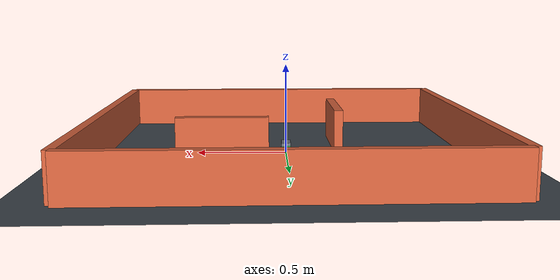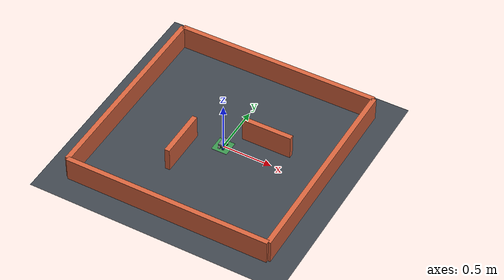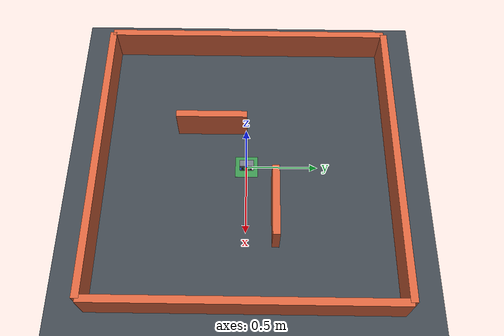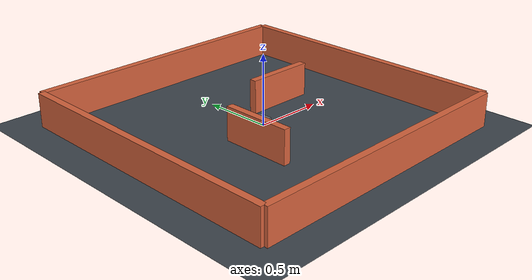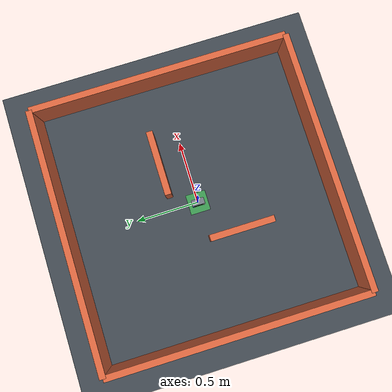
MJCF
<mujoco model="tank_car_nav">
  <compiler angle="radian" autolimits="true"/>

  <option timestep="0.02" gravity="0 0 -9.81" integrator="RK4"/>

  <visual>
    <map znear="0.01"/>
  </visual>

  <asset>
    <texture type="skybox" builtin="gradient" rgb1="0.64 0.78 0.92" rgb2="0.97 0.98 1.0" width="512" height="512"/>
    <texture type="2d" name="ground_tex" builtin="checker" rgb1="0.28 0.31 0.34" rgb2="0.21 0.24 0.27" width="512" height="512" mark="edge" markrgb="0.16 0.18 0.20"/>
    <material name="ground_mat" texture="ground_tex" texrepeat="8 8" reflectance="0.05"/>
    <material name="chassis_mat" rgba="0.44 0.46 0.50 1"/>
    <material name="track_mat" rgba="0.07 0.07 0.07 1"/>
    <material name="motor_wheel_mat" rgba="0.13 0.29 0.70 1"/>
    <material name="free_wheel_mat" rgba="0.76 0.76 0.78 1"/>
    <material name="target_mat" rgba="0.18 0.78 0.35 1"/>
    <material name="target_marker_mat" rgba="0.25 1.0 0.35 0.45"/>
    <material name="wall_mat" rgba="0.84 0.39 0.24 1"/>
  </asset>

  <default>
    <joint damping="0.2" armature="0.02"/>
    <geom condim="4" friction="1.5 0.06 0.01" solref="0.008 1" solimp="0.95 0.995 0.0001"/>
  </default>

  <worldbody>
    <light name="sun" mode="trackcom" directional="true" pos="0 0 5" dir="0 0 -1" diffuse="0.95 0.95 0.95"/>
    <geom name="ground" type="plane" size="4 4 0.1" material="ground_mat"/>

    <body name="tank" pos="0 0 0.055">
      <joint name="x_joint" type="slide" axis="1 0 0" damping="0.6" armature="0.05"/>
      <joint name="y_joint" type="slide" axis="0 1 0" damping="0.6" armature="0.05"/>
      <joint name="yaw_joint" type="hinge" axis="0 0 1" damping="0.25" armature="0.02"/>

      <geom name="chassis" type="box" pos="0 0 0" size="0.025 0.05 0.01" mass="1.6" material="chassis_mat"/>
      <geom name="track_left" type="box" pos="-0.018 0 -0.049" size="0.010 0.044 0.004" mass="0.28" material="track_mat" friction="1.8 0.08 0.01"/>
      <geom name="track_right" type="box" pos="0.018 0 -0.049" size="0.010 0.044 0.004" mass="0.28" material="track_mat" friction="1.8 0.08 0.01"/>

      <body name="wheel_top_left_motor" pos="-0.020 0.043 -0.040">
        <joint name="joint_top_left_motor" type="hinge" axis="0 1 0" damping="0.02"/>
        <geom type="cylinder" euler="1.57079632679 0 0" size="0.010 0.007" material="motor_wheel_mat" mass="0.08" contype="0" conaffinity="0"/>
      </body>

      <body name="wheel_top_right_free" pos="0.020 0.043 -0.040">
        <joint name="joint_top_right_free" type="hinge" axis="0 1 0" damping="0.006"/>
        <geom type="cylinder" euler="1.57079632679 0 0" size="0.010 0.007" material="free_wheel_mat" mass="0.08" contype="0" conaffinity="0"/>
      </body>

      <body name="wheel_bottom_left_free" pos="-0.020 -0.043 -0.040">
        <joint name="joint_bottom_left_free" type="hinge" axis="0 1 0" damping="0.006"/>
        <geom type="cylinder" euler="1.57079632679 0 0" size="0.010 0.007" material="free_wheel_mat" mass="0.08" contype="0" conaffinity="0"/>
      </body>

      <body name="wheel_bottom_right_motor" pos="0.020 -0.043 -0.040">
        <joint name="joint_bottom_right_motor" type="hinge" axis="0 1 0" damping="0.02"/>
        <geom type="cylinder" euler="1.57079632679 0 0" size="0.010 0.007" material="motor_wheel_mat" mass="0.08" contype="0" conaffinity="0"/>
      </body>

      <site name="sensor_front_1" pos="0 0.052 -0.008" zaxis="0.80901699 0.58778525 0" size="0.002" rgba="0.9 0.2 0.2 1"/>
      <site name="sensor_front_2" pos="0 0.052 -0.008" zaxis="0.30901699 0.95105652 0" size="0.002" rgba="0.9 0.5 0.2 1"/>
      <site name="sensor_front_3" pos="0 0.052 -0.008" zaxis="-0.30901699 0.95105652 0" size="0.002" rgba="0.9 0.8 0.2 1"/>
      <site name="sensor_front_4" pos="0 0.052 -0.008" zaxis="-0.80901699 0.58778525 0" size="0.002" rgba="0.2 0.9 0.9 1"/>
    </body>

    <body name="target" pos="0 0 0.025">
      <joint name="target_x" type="slide" axis="1 0 0" damping="0.1"/>
      <joint name="target_y" type="slide" axis="0 1 0" damping="0.1"/>
      <geom type="box" size="0.025 0.025 0.025" material="target_mat" mass="0.08" contype="0" conaffinity="0"/>
      <geom type="box" pos="0 0 -0.020" size="0.08 0.08 0.002" material="target_marker_mat" contype="0" conaffinity="0" mass="0.001"/>
    </body>

    <!-- Room walls: 2m x 2m interior with 5cm thickness -->
    <geom name="room_wall_north" type="box" pos="0 1.025 0.12" size="1.025 0.025 0.12" material="wall_mat" mass="3"/>
    <geom name="room_wall_south" type="box" pos="0 -1.025 0.12" size="1.025 0.025 0.12" material="wall_mat" mass="3"/>
    <geom name="room_wall_east" type="box" pos="1.025 0 0.12" size="0.025 1.025 0.12" material="wall_mat" mass="3"/>
    <geom name="room_wall_west" type="box" pos="-1.025 0 0.12" size="0.025 1.025 0.12" material="wall_mat" mass="3"/>

    <!-- Minimal interior obstacles: 50cm x 5cm walls -->
    <geom name="inner_wall_a" type="box" pos="0.35 0.20 0.12" size="0.25 0.025 0.12" material="wall_mat" mass="3"/>
    <geom name="inner_wall_b" type="box" pos="-0.30 -0.25 0.12" euler="0 0 1.57079632679" size="0.25 0.025 0.12" material="wall_mat" mass="3"/>

    <camera name="showcase" pos="0 -3.2 2.2" xyaxes="1 0 0 0 0.57 0.82"/>
    <camera name="topdown" pos="0 0 3.0" xyaxes="1 0 0 0 1 0"/>
  </worldbody>

  <actuator>
    <motor name="drive_x" joint="x_joint" ctrllimited="true" ctrlrange="-85 85"/>
    <motor name="drive_y" joint="y_joint" ctrllimited="true" ctrlrange="-85 85"/>
    <motor name="drive_yaw" joint="yaw_joint" ctrllimited="true" ctrlrange="-18 18"/>
    <motor name="motor_top_left" joint="joint_top_left_motor" ctrllimited="true" ctrlrange="-6 6"/>
    <motor name="motor_bottom_right" joint="joint_bottom_right_motor" ctrllimited="true" ctrlrange="-6 6"/>
  </actuator>
</mujoco>
